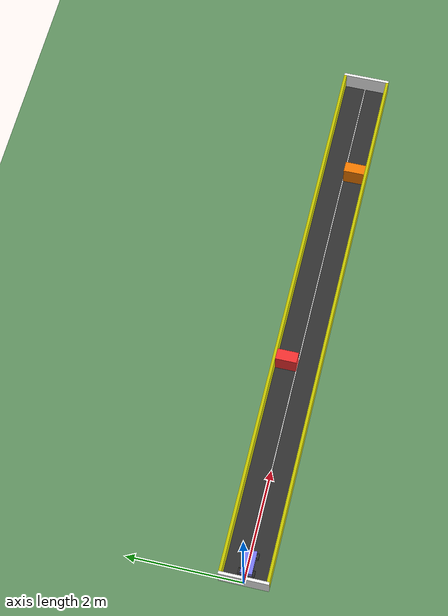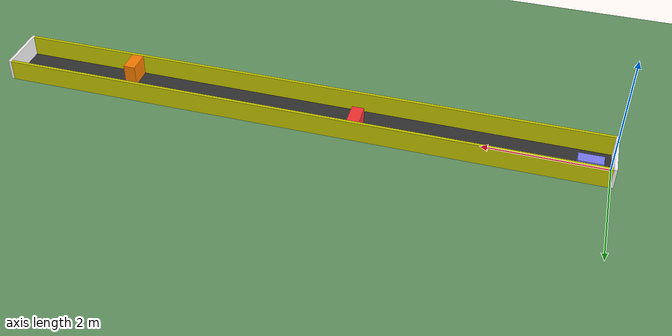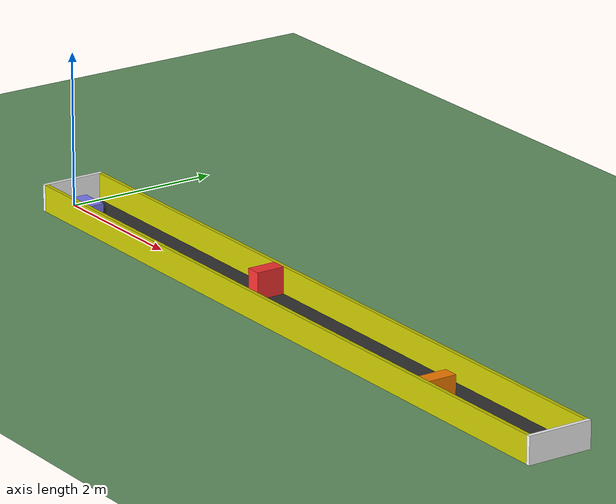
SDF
<?xml version="1.0" ?>
<sdf version="1.6">
  <world name="racing_track">

    <!-- ═══════════════════════════════════════
         PHYSICS & CORE PLUGINS
    ═══════════════════════════════════════ -->
    <physics name="1ms" type="ignored">
      <max_step_size>0.001</max_step_size>
      <real_time_factor>1.0</real_time_factor>
    </physics>

    <plugin filename="gz-sim-physics-system"
            name="gz::sim::systems::Physics"/>
    <plugin filename="gz-sim-user-commands-system"
            name="gz::sim::systems::UserCommands"/>
    <plugin filename="gz-sim-scene-broadcaster-system"
            name="gz::sim::systems::SceneBroadcaster"/>

    <!-- ═══════════════════════════════════════
         LIGHTING
    ═══════════════════════════════════════ -->
    <light type="directional" name="sun">
      <cast_shadows>true</cast_shadows>
      <pose>0 0 10 0 0 0</pose>
      <diffuse>1 1 1 1</diffuse>
      <specular>0.5 0.5 0.5 1</specular>
      <attenuation>
        <range>1000</range>
        <constant>0.9</constant>
        <linear>0.01</linear>
        <quadratic>0.001</quadratic>
      </attenuation>
      <direction>-0.5 0.1 -0.9</direction>
    </light>

    <!-- ═══════════════════════════════════════
         GROUND PLANE
    ═══════════════════════════════════════ -->
    <model name="ground_plane">
      <static>true</static>
      <link name="link">
        <collision name="collision">
          <geometry>
            <plane>
              <normal>0 0 1</normal>
              <size>20 8</size>
            </plane>
          </geometry>
          <surface>
            <friction>
              <ode>
                <mu>50</mu>
                <mu2>50</mu2>
              </ode>
            </friction>
          </surface>
        </collision>
        <visual name="visual">
          <geometry>
            <plane>
              <normal>0 0 1</normal>
              <size>20 8</size>
            </plane>
          </geometry>
          <material>
            <ambient>0.4 0.6 0.4 1</ambient>
            <diffuse>0.4 0.6 0.4 1</diffuse>
          </material>
        </visual>
      </link>
    </model>

    <model name="road_surface">
      <static>true</static>
      <pose>5.0 0 0.002 0 0 0</pose>
      <link name="link">
        <collision name="collision">
          <geometry>
            <box>
              <size>10.0 0.75 0.004</size>
            </box>
          </geometry>
        </collision>
        <visual name="visual">
          <geometry>
            <box>
              <size>10.0 0.75 0.004</size>
            </box>
          </geometry>
          <material>
            <ambient>0.2 0.2 0.2 1</ambient>
            <diffuse>0.2 0.2 0.2 1</diffuse>
          </material>
        </visual>
      </link>
    </model>

    <!-- Lane divider at y = 0 -->
    <model name="lane_divider">
      <static>true</static>
      <pose>5.0 0 0.006 0 0 0</pose>
      <link name="link">
        <visual name="visual">
          <geometry>
            <box>
              <size>10.0 0.015 0.004</size>
            </box>
          </geometry>
          <material>
            <ambient>1 1 1 1</ambient>
            <diffuse>1 1 1 1</diffuse>
          </material>
        </visual>
      </link>
    </model>

    <model name="wall_top">
      <static>true</static>
      <pose>5.0 0.400 0.175 0 0 0</pose>
      <link name="link">
        <collision name="collision">
          <geometry>
            <box>
              <size>10.0 0.05 0.35</size>
            </box>
          </geometry>
        </collision>
        <visual name="visual">
          <geometry>
            <box>
              <size>10.0 0.05 0.35</size>
            </box>
          </geometry>
          <material>
            <ambient>0.8 0.8 0.0 1</ambient>
            <diffuse>0.8 0.8 0.0 1</diffuse>
          </material>
        </visual>
      </link>
    </model>

    <model name="wall_bottom">
      <static>true</static>
      <pose>5.0 -0.400 0.175 0 0 0</pose>
      <link name="link">
        <collision name="collision">
          <geometry>
            <box>
              <size>10.0 0.05 0.35</size>
            </box>
          </geometry>
        </collision>
        <visual name="visual">
          <geometry>
            <box>
              <size>10.0 0.05 0.35</size>
            </box>
          </geometry>
          <material>
            <ambient>0.8 0.8 0.0 1</ambient>
            <diffuse>0.8 0.8 0.0 1</diffuse>
          </material>
        </visual>
      </link>
    </model>

    <!-- Start wall: inner face at x = 0 -->
    <model name="wall_start">
      <static>true</static>
      <pose>-0.025 0 0.175 0 0 0</pose>
      <link name="link">
        <collision name="collision">
          <geometry>
            <box>
              <size>0.05 0.85 0.35</size>
            </box>
          </geometry>
        </collision>
        <visual name="visual">
          <geometry>
            <box>
              <size>0.05 0.85 0.35</size>
            </box>
          </geometry>
          <material>
            <ambient>1 1 1 1</ambient>
            <diffuse>1 1 1 1</diffuse>
          </material>
        </visual>
      </link>
    </model>

    <!-- End wall: inner face at x = 10 -->
    <model name="wall_end">
      <static>true</static>
      <pose>10.025 0 0.175 0 0 0</pose>
      <link name="link">
        <collision name="collision">
          <geometry>
            <box>
              <size>0.05 0.85 0.35</size>
            </box>
          </geometry>
        </collision>
        <visual name="visual">
          <geometry>
            <box>
              <size>0.05 0.85 0.35</size>
            </box>
          </geometry>
          <material>
            <ambient>1 1 1 1</ambient>
            <diffuse>1 1 1 1</diffuse>
          </material>
        </visual>
      </link>
    </model>

    <model name="obstacle_1">
      <static>true</static>
      <pose>4.0 0.1875 0.175 0 0 0</pose>
      <link name="link">
        <collision name="collision">
          <geometry>
            <box>
              <size>0.2 0.375 0.35</size>
            </box>
          </geometry>
        </collision>
        <visual name="visual">
          <geometry>
            <box>
              <size>0.2 0.375 0.35</size>
            </box>
          </geometry>
          <material>
            <ambient>1 0.2 0.2 1</ambient>
            <diffuse>1 0.2 0.2 1</diffuse>
            <specular>0.5 0.5 0.5 1</specular>
          </material>
        </visual>
      </link>
    </model>

    <model name="obstacle_2">
      <static>true</static>
      <pose>8.0 -0.1875 0.175 0 0 0</pose>
      <link name="link">
        <collision name="collision">
          <geometry>
            <box>
              <size>0.2 0.375 0.35</size>
            </box>
          </geometry>
        </collision>
        <visual name="visual">
          <geometry>
            <box>
              <size>0.2 0.375 0.35</size>
            </box>
          </geometry>
          <material>
            <ambient>1 0.5 0.0 1</ambient>
            <diffuse>1 0.5 0.0 1</diffuse>
            <specular>0.5 0.5 0.5 1</specular>
          </material>
        </visual>
      </link>
    </model>

    <!-- ═══════════════════════════════════════
         ACKERMANN VEHICLE
         Start: x = 0.35, y = 0, heading = 0
    ═══════════════════════════════════════ -->
    <model name="vehicle_blue">
      <pose>0.35 0 0.065 0 0 0</pose>

      <link name="chassis">
        <pose>-0.030285 0 0.035 0 0 0</pose>
        <inertial>
          <mass>1.0</mass>
          <inertia>
            <ixx>0.005</ixx>
            <ixy>0</ixy>
            <ixz>0</ixz>
            <iyy>0.015</iyy>
            <iyz>0</iyz>
            <izz>0.018</izz>
          </inertia>
        </inertial>
        <visual name="visual">
          <geometry>
            <box>
              <size>0.402284 0.2 0.113745</size>
            </box>
          </geometry>
          <material>
            <ambient>0.5 0.5 1.0 1</ambient>
            <diffuse>0.5 0.5 1.0 1</diffuse>
            <specular>0.0 0.0 1.0 1</specular>
          </material>
        </visual>
        <collision name="collision">
          <geometry>
            <box>
              <size>0.402284 0.2 0.113745</size>
            </box>
          </geometry>
        </collision>
      </link>

      <link name="front_left_wheel">
        <pose>0.110857 0.125006 -0.005 -1.5707 0 0</pose>
        <inertial>
          <mass>0.05</mass>
          <inertia>
            <ixx>0.00003</ixx>
            <ixy>0</ixy>
            <ixz>0</ixz>
            <iyy>0.00003</iyy>
            <iyz>0</iyz>
            <izz>0.00005</izz>
          </inertia>
        </inertial>
        <visual name="visual">
          <geometry>
            <cylinder>
              <length>0.03</length>
              <radius>0.06</radius>
            </cylinder>
          </geometry>
          <material>
            <ambient>0.2 0.2 0.2 1</ambient>
            <diffuse>0.2 0.2 0.2 1</diffuse>
          </material>
        </visual>
        <collision name="collision">
          <geometry>
            <cylinder>
              <length>0.03</length>
              <radius>0.06</radius>
            </cylinder>
          </geometry>
          <surface>
            <friction>
              <ode>
                <mu>1.2</mu>
                <mu2>1.2</mu2>
                <fdir1>0 0 1</fdir1>
              </ode>
            </friction>
          </surface>
        </collision>
      </link>

      <link name="rear_left_wheel">
        <pose>-0.191428 0.125006 -0.005 -1.5707 0 0</pose>
        <inertial>
          <mass>0.05</mass>
          <inertia>
            <ixx>0.00003</ixx>
            <ixy>0</ixy>
            <ixz>0</ixz>
            <iyy>0.00003</iyy>
            <iyz>0</iyz>
            <izz>0.00005</izz>
          </inertia>
        </inertial>
        <visual name="visual">
          <geometry>
            <cylinder>
              <length>0.03</length>
              <radius>0.06</radius>
            </cylinder>
          </geometry>
          <material>
            <ambient>0.2 0.2 0.2 1</ambient>
            <diffuse>0.2 0.2 0.2 1</diffuse>
          </material>
        </visual>
        <collision name="collision">
          <geometry>
            <cylinder>
              <length>0.03</length>
              <radius>0.06</radius>
            </cylinder>
          </geometry>
          <surface>
            <friction>
              <ode>
                <mu>1.2</mu>
                <mu2>1.2</mu2>
                <fdir1>0 0 1</fdir1>
              </ode>
            </friction>
          </surface>
        </collision>
      </link>

      <link name="front_right_wheel">
        <pose>0.110856 -0.125006 -0.005 -1.5707 0 0</pose>
        <inertial>
          <mass>0.05</mass>
          <inertia>
            <ixx>0.00003</ixx>
            <ixy>0</ixy>
            <ixz>0</ixz>
            <iyy>0.00003</iyy>
            <iyz>0</iyz>
            <izz>0.00005</izz>
          </inertia>
        </inertial>
        <visual name="visual">
          <geometry>
            <cylinder>
              <length>0.03</length>
              <radius>0.06</radius>
            </cylinder>
          </geometry>
          <material>
            <ambient>0.2 0.2 0.2 1</ambient>
            <diffuse>0.2 0.2 0.2 1</diffuse>
          </material>
        </visual>
        <collision name="collision">
          <geometry>
            <cylinder>
              <length>0.03</length>
              <radius>0.06</radius>
            </cylinder>
          </geometry>
          <surface>
            <friction>
              <ode>
                <mu>1.2</mu>
                <mu2>1.2</mu2>
                <fdir1>0 0 1</fdir1>
              </ode>
            </friction>
          </surface>
        </collision>
      </link>

      <link name="rear_right_wheel">
        <pose>-0.191428 -0.125006 -0.005 -1.5707 0 0</pose>
        <inertial>
          <mass>0.05</mass>
          <inertia>
            <ixx>0.00003</ixx>
            <ixy>0</ixy>
            <ixz>0</ixz>
            <iyy>0.00003</iyy>
            <iyz>0</iyz>
            <izz>0.00005</izz>
          </inertia>
        </inertial>
        <visual name="visual">
          <geometry>
            <cylinder>
              <length>0.03</length>
              <radius>0.06</radius>
            </cylinder>
          </geometry>
          <material>
            <ambient>0.2 0.2 0.2 1</ambient>
            <diffuse>0.2 0.2 0.2 1</diffuse>
          </material>
        </visual>
        <collision name="collision">
          <geometry>
            <cylinder>
              <length>0.03</length>
              <radius>0.06</radius>
            </cylinder>
          </geometry>
          <surface>
            <friction>
              <ode>
                <mu>1.2</mu>
                <mu2>1.2</mu2>
                <fdir1>0 0 1</fdir1>
              </ode>
            </friction>
          </surface>
        </collision>
      </link>

      <link name="front_left_wheel_steering_link">
        <pose>0.110857 0.100000 0.004 0 0 0</pose>
        <inertial>
          <mass>0.02</mass>
          <inertia>
            <ixx>0.00001</ixx>
            <ixy>0</ixy>
            <ixz>0</ixz>
            <iyy>0.00001</iyy>
            <iyz>0</iyz>
            <izz>0.00001</izz>
          </inertia>
        </inertial>
        <visual name="steering_link_visual">
          <geometry>
            <cylinder>
              <length>0.02</length>
              <radius>0.01</radius>
            </cylinder>
          </geometry>
          <material>
            <ambient>1 1 1 1</ambient>
            <diffuse>1 1 1 1</diffuse>
          </material>
        </visual>
      </link>

      <link name="front_right_wheel_steering_link">
        <pose>0.110857 -0.100000 0.004 0 0 0</pose>
        <inertial>
          <mass>0.02</mass>
          <inertia>
            <ixx>0.00001</ixx>
            <ixy>0</ixy>
            <ixz>0</ixz>
            <iyy>0.00001</iyy>
            <iyz>0</iyz>
            <izz>0.00001</izz>
          </inertia>
        </inertial>
        <visual name="steering_link_visual">
          <geometry>
            <cylinder>
              <length>0.02</length>
              <radius>0.01</radius>
            </cylinder>
          </geometry>
          <material>
            <ambient>1 1 1 1</ambient>
            <diffuse>1 1 1 1</diffuse>
          </material>
        </visual>
      </link>

      <joint name="front_left_wheel_steering_joint" type="revolute">
        <child>front_left_wheel_steering_link</child>
        <parent>chassis</parent>
        <axis>
          <xyz>0 0 1</xyz>
          <limit>
            <lower>-0.6</lower>
            <upper>0.6</upper>
            <velocity>1.0</velocity>
            <effort>5</effort>
          </limit>
          <use_parent_model_frame>1</use_parent_model_frame>
        </axis>
      </joint>

      <joint name="front_right_wheel_steering_joint" type="revolute">
        <parent>chassis</parent>
        <child>front_right_wheel_steering_link</child>
        <axis>
          <xyz>0 0 1</xyz>
          <limit>
            <lower>-0.6</lower>
            <upper>0.6</upper>
            <velocity>1.0</velocity>
            <effort>5</effort>
          </limit>
          <use_parent_model_frame>1</use_parent_model_frame>
        </axis>
      </joint>

      <joint name="front_left_wheel_joint" type="revolute">
        <parent>front_left_wheel_steering_link</parent>
        <child>front_left_wheel</child>
        <axis>
          <xyz>0 0 1</xyz>
          <limit>
            <lower>-1.79769e+308</lower>
            <upper>1.79769e+308</upper>
          </limit>
        </axis>
      </joint>

      <joint name="front_right_wheel_joint" type="revolute">
        <parent>front_right_wheel_steering_link</parent>
        <child>front_right_wheel</child>
        <axis>
          <xyz>0 0 1</xyz>
          <limit>
            <lower>-1.79769e+308</lower>
            <upper>1.79769e+308</upper>
          </limit>
        </axis>
      </joint>

      <joint name="rear_left_wheel_joint" type="revolute">
        <parent>chassis</parent>
        <child>rear_left_wheel</child>
        <axis>
          <xyz>0 0 1</xyz>
          <limit>
            <lower>-1.79769e+308</lower>
            <upper>1.79769e+308</upper>
          </limit>
        </axis>
      </joint>

      <joint name="rear_right_wheel_joint" type="revolute">
        <parent>chassis</parent>
        <child>rear_right_wheel</child>
        <axis>
          <xyz>0 0 1</xyz>
          <limit>
            <lower>-1.79769e+308</lower>
            <upper>1.79769e+308</upper>
          </limit>
        </axis>
      </joint>

      <!-- Ackermann Steering Plugin -->
      <plugin filename="gz-sim-ackermann-steering-system"
              name="gz::sim::systems::AckermannSteering">
        <left_joint>front_left_wheel_joint</left_joint>
        <left_joint>rear_left_wheel_joint</left_joint>
        <right_joint>front_right_wheel_joint</right_joint>
        <right_joint>rear_right_wheel_joint</right_joint>
        <left_steering_joint>front_left_wheel_steering_joint</left_steering_joint>
        <right_steering_joint>front_right_wheel_steering_joint</right_steering_joint>

        <kingpin_width>0.20</kingpin_width>
        <steering_limit>0.55</steering_limit>
        <wheel_base>0.302284</wheel_base>
        <wheel_separation>0.25</wheel_separation>
        <wheel_radius>0.06</wheel_radius>

        <min_velocity>-1.5</min_velocity>
        <max_velocity>1.5</max_velocity>
        <min_acceleration>-1.0</min_acceleration>
        <max_acceleration>1.0</max_acceleration>

        <topic>/model/vehicle_blue/cmd_vel</topic>
        <odom_topic>/model/vehicle_blue/odometry</odom_topic>
        <tf_topic>/model/vehicle_blue/tf</tf_topic>
        <frame_id>odom</frame_id>
        <child_frame_id>vehicle_blue/chassis</child_frame_id>
        <odom_publish_frequency>50</odom_publish_frequency>
      </plugin>

      <plugin filename="gz-sim-joint-state-publisher-system"
              name="gz::sim::systems::JointStatePublisher"/>

    </model>

  </world>
</sdf>
